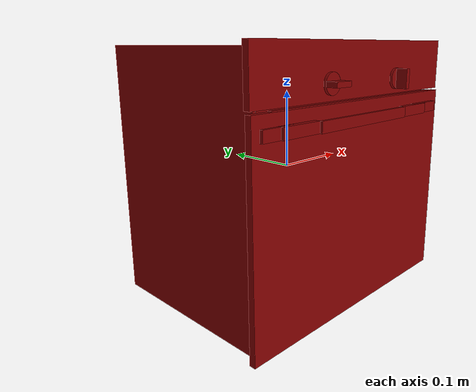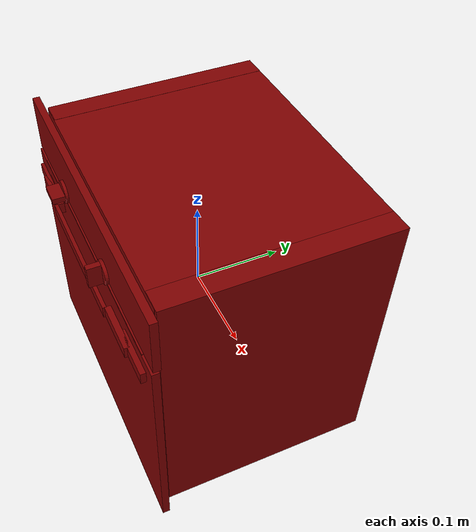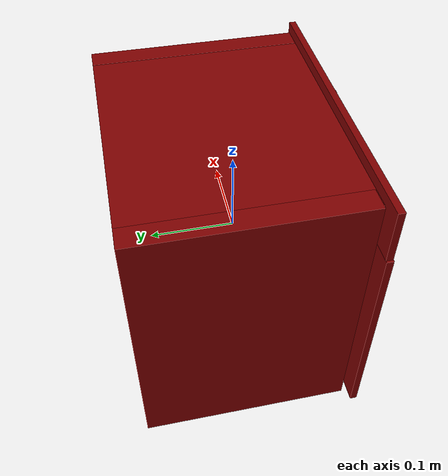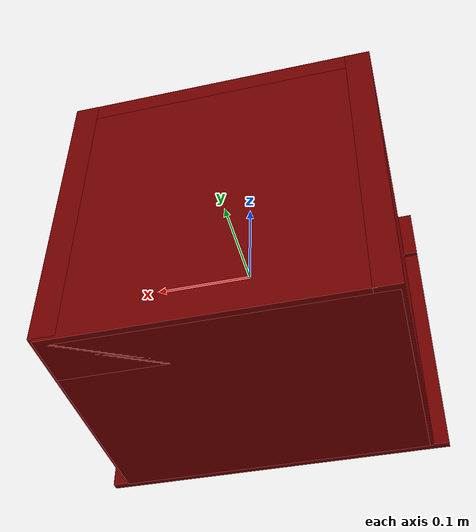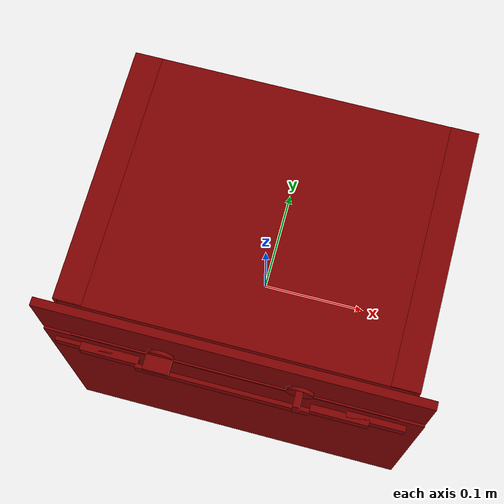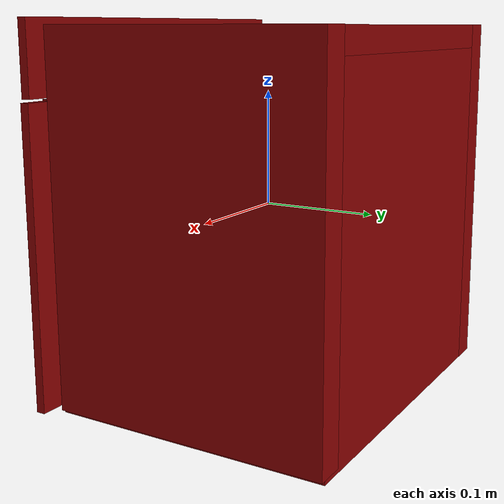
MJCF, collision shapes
<?xml version='1.0' encoding='UTF-8'?>
<mujoco model="model">
  <option timestep="0.002" gravity="0.0 0.0 -9.81"/>
  <compiler angle="radian"/>
  <asset>
    <mesh file="visuals/door.obj" name="door_vis"/>
    <mesh file="visuals/door_Clear.obj" name="door_Clear_vis"/>
    <mesh file="visuals/knob_temp.obj" name="knob_temp_vis"/>
    <mesh file="visuals/knob_time.obj" name="knob_time_vis"/>
    <mesh file="visuals/Body001.obj" name="Body001_vis"/>
    <mesh file="visuals/rack0.obj" name="rack0_vis"/>
    <texture file="visuals/T_BC001.png" name="Body001_material" type="2d"/>
    <material name="Body001_material" rgba="1 1 1 1.0" texture="Body001_material" shininess="0.5" specular="2"/>
    <texture file="visuals/T_BC001.png" name="door_material" type="2d"/>
    <material name="door_material" rgba="1 1 1 1.0" texture="door_material" shininess="0.5" specular="2"/>
    <texture file="visuals/T_BC001.png" name="door_Clear_material" type="2d"/>
    <material name="door_Clear_material" rgba="1 1 1 0.8857143521308899" texture="door_Clear_material" shininess="0.5" specular="0.3103448502657381"/>
    <texture file="visuals/T_BC001.png" name="knob_temp_material" type="2d"/>
    <material name="knob_temp_material" rgba="1 1 1 1.0" texture="knob_temp_material" shininess="0.5" specular="0.3103448502657381"/>
    <texture file="visuals/T_BC001.png" name="knob_time_material" type="2d"/>
    <material name="knob_time_material" rgba="1 1 1 1.0" texture="knob_time_material" shininess="0.5" specular="0.3103448502657381"/>
    <texture file="visuals/T_BC001.png" name="rack0_material" type="2d"/>
    <material name="rack0_material" rgba="1 1 1 1.0" texture="rack0_material" shininess="0.5" specular="2"/>
  </asset>
  <default>
    <default class="visual">
      <geom conaffinity="0" contype="0" group="1" type="mesh"/>
    </default>
    <default class="collision">
      <geom group="0" rgba="0.5 0 0 0.5"/>
    </default>
    <default class="spawn">
      <geom group="0" rgba="1 1 1 0.5" contype="0" conaffinity="0"/>
      <site group="0" rgba="1 1 1 0.5"/>
    </default>
    <default class="region">
      <geom group="1" conaffinity="0" contype="0" rgba="0 1 0 0"/>
    </default>
  </default>
  <worldbody>
    <body>
      <body name="object">
        <geom mesh="Body001_vis" type="mesh" solimp="0.998 0.998 0.001" solref="0.001 1" friction="0.95 0.3 0.1" class="visual" material="Body001_material"/>
        <geom class="collision" type="box" pos="-0.14694291 0.01603397 -0.00298788" size="0.012819837778806686 0.12177298218011856 0.1598728746175766" quat="1.0 0.0 0.0 0.0"/>
        <geom class="collision" type="box" pos="0.14725167 0.01577289 -0.00117179" size="0.012671329081058502 0.12203405797481537 0.1582917422056198" quat="1.0 0.0 0.0 0.0"/>
        <geom class="collision" type="box" pos="-0.00015042 0.01231671 -0.13769515" size="0.1559477150440216 0.118649922311306 0.025165602564811707" quat="1.0 0.0 0.0 0.0"/>
        <geom class="collision" type="box" pos="-0.00015042 0.01562847 0.11586326" size="0.1559477150440216 0.12217816710472107 0.04095924273133278" quat="1.0 0.0 0.0 0.0"/>
        <geom class="collision" type="box" pos="-0.00001822 -0.11408448 0.13149740" size="0.1747836470603943 0.0038846442475914955 0.03136337175965309" quat="1.0 0.0 0.0 0.0"/>
        <geom class="collision" type="box" pos="-0.00015042 0.10943844 -0.01330116" size="0.1559477150440216 0.028368467465043068 0.14955957233905792" quat="1.0 0.0 0.0 0.0"/>
        <geom class="collision" type="box" pos="0.12792221 -0.01518173 -0.07071436" size="0.012250090017914772 0.07843343913555145 0.04441990703344345" quat="1.0 0.0 0.0 0.0"/>
        <geom class="collision" type="box" pos="0.12792221 -0.01518173 0.02437796" size="0.012250090017914772 0.07843343913555145 0.021426906809210777" quat="1.0 0.0 0.0 0.0"/>
        <geom class="collision" type="box" pos="-0.12413706 -0.01518173 0.02437796" size="0.008853870443999767 0.07843343913555145 0.021426906809210777" quat="1.0 0.0 0.0 0.0"/>
        <geom class="collision" type="box" pos="-0.12413706 -0.01518173 -0.07071436" size="0.008853870443999767 0.07843343913555145 0.04441990703344345" quat="1.0 0.0 0.0 0.0"/>
        <body name="door">
          <joint axis="1.0 0.0 0.0" pos="-0.0 -0.11967994226139188 -0.1584411908493805" limited="true" name="door_joint" range="0.0 1.15" type="hinge" damping="1" frictionloss="1" armature="1" stiffness="2"/>
          <geom mesh="door_vis" type="mesh" solimp="0.998 0.998 0.001" solref="0.001 1" friction="0.95 0.3 0.1" class="visual" material="door_material"/>
          <geom class="collision" type="box" pos="-0.00000000 -0.11571215 -0.03062508" size="0.1748010516166687 0.003967792261391878 0.1278161108493805" quat="1.0 0.0 0.0 0.0" name="door_main"/>
          <geom class="collision" type="box" pos="0.00118354 -0.11697063 -0.00483730" size="0.1499202698469162 0.0025406836066395044 0.10333734005689621" quat="1.0 0.0 0.0 0.0"/>
          <geom class="collision" type="box" pos="-0.00693930 -0.12845169 0.07717180" size="0.08096671104431152 0.0020294401329010725 0.006421780679374933" quat="1.0 0.0 0.0 0.0" name="door_handle_main"/>
          <geom class="collision" type="box" pos="0.10074192 -0.12529373 0.07717180" size="0.02707003243267536 0.0032789406832307577 0.0064217871986329556" quat="1.0 0.0 0.0 0.0"/>
          <geom class="collision" type="box" pos="0.13338996 -0.12208622 0.07717180" size="0.027070030570030212 0.0032789399847388268 0.0064217871986329556" quat="1.0 0.0 0.0 0.0"/>
          <geom class="collision" type="box" pos="-0.11417501 -0.12356590 0.07717180" size="0.027037248015403748 0.0038381528574973345 0.0064217871986329556" quat="1.0 0.0 0.0 0.0"/>
          <geom class="collision" type="box" pos="-0.13809399 -0.12241119 0.07717180" size="0.02710079960525036 0.0019289841875433922 0.0064217871986329556" quat="1.0 0.0 0.0 0.0"/>
          <body name="door_Clear">
            <geom mesh="door_Clear_vis" type="mesh" solimp="0.998 0.998 0.001" solref="0.001 1" friction="0.95 0.3 0.1" class="visual" material="door_Clear_material"/>
            <geom class="collision" type="box" pos="0.00118354 -0.11697063 -0.00483730" size="0.1499202698469162 0.0025406836066395044 0.10333734005689621" quat="1.0 0.0 0.0 0.0"/>
          </body>
        </body>
        <body name="knob_temp">
          <joint axis="0.0 1.0 0.0" pos="0.06238090 -0.12704176 0.11828506" limited="true" name="knob_temp_joint" range="0.0 5.585053606381854" type="hinge" damping="0.05" armature="1" frictionloss="0.75"/>
          <geom mesh="knob_temp_vis" type="mesh" solimp="0.998 0.998 0.001" solref="0.001 1" friction="0.95 0.3 0.1" class="visual" material="knob_temp_material"/>
          <geom class="collision" type="box" pos="0.06238090 -0.13074962 0.11828506" size="0.0030871019698679447 0.00730646587908268 0.011796942912042141" quat="1.0 0.0 0.0 0.0" name="knob_temp_main" friction="100 0.5 0.01"/>
          <geom class="collision" type="cylinder" pos="0.06238090 -0.12220559 0.11828506" size="0.012421511113643646 0.0016937090549618006" quat="0.7071067094802856 0.7071068286895752 0.0 0.0" friction="100 0.5 0.01"/>
        </body>
        <body name="knob_time">
          <joint axis="0.0 1.0 0.0" pos="-0.06284980 -0.12693498 0.11876126" limited="true" name="knob_time_joint" range="0.0 5.253441048502932" type="hinge" damping="0.05" armature="1" frictionloss="0.75"/>
          <geom mesh="knob_time_vis" type="mesh" solimp="0.998 0.998 0.001" solref="0.001 1" friction="0.95 0.3 0.1" class="visual" material="knob_time_material"/>
          <geom class="collision" type="box" pos="-0.06284980 -0.13053575 0.11876126" size="0.01189584843814373 0.007139259949326515 0.003046347526833415" quat="1.0 0.0 0.0 0.0" name="knob_time_main" friction="100 0.5 0.01"/>
          <geom class="collision" type="cylinder" pos="-0.06284980 -0.12214440 0.11876126" size="0.01214083842933178 0.0016554385656490922" quat="0.7071067094802856 0.7071068286895752 0.0 0.0" friction="100 0.5 0.01"/>
        </body>
        <body name="rack0">
          <geom class="region" name="reg_rack0" type="box" pos="7.129000000000163e-05 -0.017202904999999998 0.03437878" size="0.09380669 0.045894215 0.041525229999999996"/>
          <joint axis="0.0 -1.0 0.0" pos="0.00000000 -0.01731280 -0.00396045" limited="true" name="rack0_joint" range="0.0 0.12" type="slide" damping="1" frictionloss="1" armature=".01" stiffness="0.05"/>
          <geom mesh="rack0_vis" type="mesh" solimp="0.998 0.998 0.001" solref="0.001 1" friction="0.95 0.3 0.1" class="visual" material="rack0_material"/>
          <geom class="collision" type="box" pos="0.00000000 -0.07946076 -0.00157069" size="0.1263512820005417 0.006925018969923258 0.0008162767044268548" quat="1.0 0.0 0.0 0.0"/>
          <geom class="collision" type="box" pos="0.00000000 0.04470773 -0.00157069" size="0.12635129690170288 0.006925018969923258 0.0008162767044268548" quat="1.0 0.0 0.0 0.0"/>
          <geom class="collision" type="box" pos="0.00000000 -0.01719024 -0.00671720" size="0.0939563736319542 0.04536223039031029 0.0005707517848350108" quat="1.0 0.0 0.0 0.0"/>
          <geom class="collision" type="box" pos="0.00000000 0.03315562 -0.00411951" size="0.09554532915353775 0.005926953628659248 0.0008162767044268548" quat="0.9777550101280212 0.209750235080719 -4.657390808143069e-17 -2.3831848850590905e-24"/>
          <geom class="collision" type="box" pos="0.00000000 -0.06762117 -0.00396996" size="0.09554532915353775 0.005926953628659248 0.0008162767044268548" quat="0.9756481051445007 -0.21934163570404053 4.870362684351382e-17 2.560320643098074e-24"/>
          <geom class="collision" type="box" pos="0.11752841 -0.01813999 -0.00157069" size="0.008874640800058842 0.056145500391721725 0.0008162767044268548" quat="1.0 0.0 0.0 0.0"/>
          <geom class="collision" type="box" pos="-0.11736030 -0.01813999 -0.00157069" size="0.008874640800058842 0.056145500391721725 0.0008162767044268548" quat="1.0 0.0 0.0 0.0"/>
          <geom class="collision" type="box" pos="0.10118678 -0.01749947 -0.00370507" size="0.05609141290187836 0.00839549396187067 0.0008162767626345158" quat="0.6982157230377197 -0.11178004741668701 -0.11178005486726761 0.6982157826423645"/>
          <geom class="collision" type="box" pos="-0.10107085 -0.01749947 -0.00370507" size="0.05609141290187836 0.008395494893193245 0.0008162767626345158" quat="0.6982157826423645 0.11177980154752731 0.11177980154752731 0.6982157826423645"/>
        </body>
        <geom class="region" name="reg_int" type="box" pos="-2.4804999999995803e-05 -0.009248699999999999 -0.020644405000000005" size="0.111162455 0.08601098 0.087461205"/>
        <geom class="region" name="reg_main" type="box" pos="0.0 0.00906349 0.0" size="0.17580144 0.12974344 0.16386075"/>
      </body>
    </body>
  </worldbody>
  <actuator>
    <motor name="door_joint_actuator" joint="door_joint" gear="10"/>
    <motor name="knob_temp_joint_actuator" joint="knob_temp_joint" gear="10"/>
    <motor name="knob_time_joint_actuator" joint="knob_time_joint" gear="10"/>
    <motor name="rack0_joint_actuator" joint="rack0_joint" gear="10"/>
  </actuator>
</mujoco>
